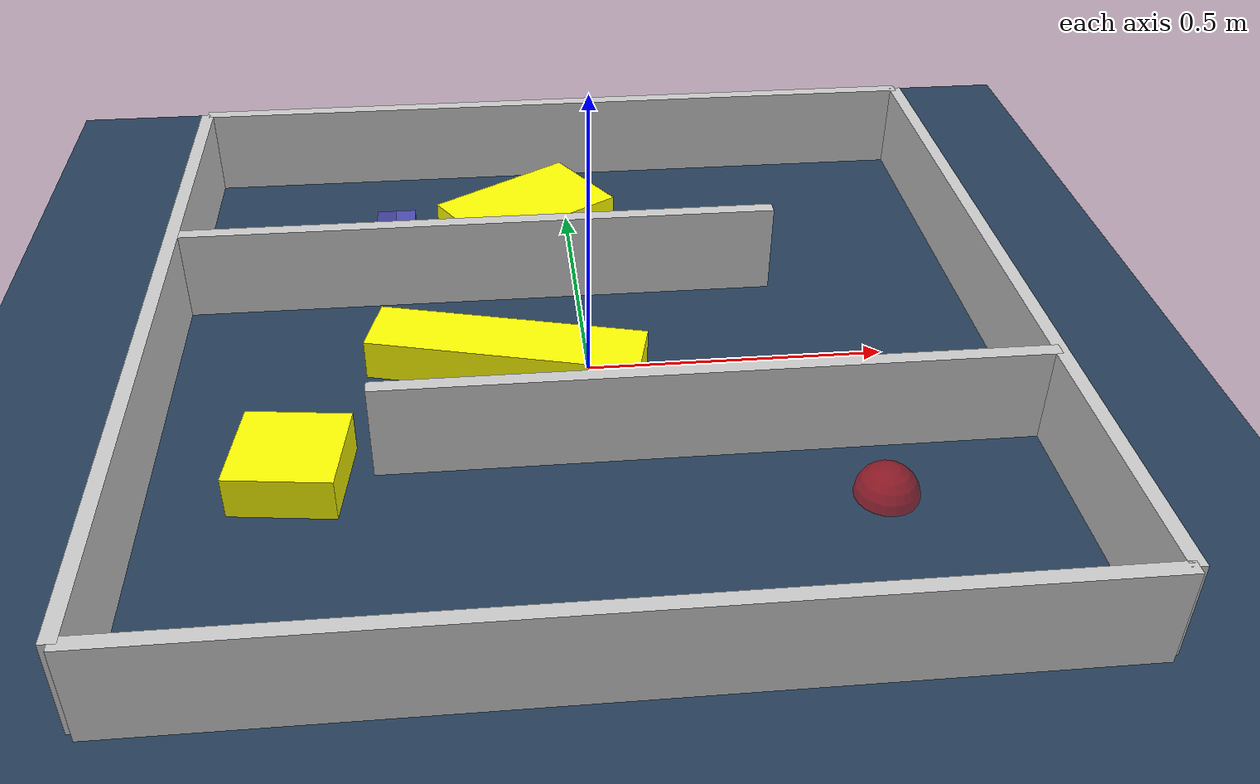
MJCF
<?xml version='1.0' encoding='utf-8'?>
<mujoco model="generated_environment">
  <option timestep="0.002" integrator="implicitfast" cone="elliptic" iterations="100" gravity="0 0 -9.81" />
  <default>
    <geom density="1" />
  </default>
  <asset>
    <texture builtin="gradient" height="3072" rgb1="0.3 0.5 0.7" rgb2="0 0 0" type="skybox" width="512" />
    <texture builtin="checker" height="300" mark="edge" markrgb="0.8 0.8 0.8" name="groundplane" rgb1="0.2 0.3 0.4" rgb2="0.1 0.2 0.3" type="2d" width="300" />
    <material name="groundplane" reflectance="0.2" texrepeat="5 5" texture="groundplane" texuniform="true" />
    <material name="robot" rgba="1.0 1.0 0.0 1.0" />
  </asset>
  <worldbody>
    <light dir="0 0 -1" directional="true" pos="0 0 1.5" />
    <geom condim="4" friction="0.5 0.005 0.001" material="groundplane" name="floor" size="0 0 0.05" type="plane" />
    <body name="walls">
      <geom name="wall_1" condim="4" pos="-0.699000 0.000000 0.080000" rgba="0.800000011920929 0.800000011920929 0.800000011920929 1.0" size="0.011650 0.699000 0.080000" type="box" />
      <geom name="wall_2" condim="4" pos="0.699000 0.000000 0.080000" rgba="0.800000011920929 0.800000011920929 0.800000011920929 1.0" size="0.011650 0.699000 0.080000" type="box" />
      <geom name="wall_3" condim="4" pos="0.000000 -0.699000 0.080000" rgba="0.800000011920929 0.800000011920929 0.800000011920929 1.0" size="0.699000 0.011650 0.080000" type="box" />
      <geom name="wall_4" condim="4" pos="0.000000 0.699000 0.080000" rgba="0.800000011920929 0.800000011920929 0.800000011920929 1.0" size="0.699000 0.011650 0.080000" type="box" />
      <geom name="wall_5" condim="4" pos="0.174750 -0.233000 0.080000" rgba="0.800000011920929 0.800000011920929 0.800000011920929 1.0" size="0.524250 0.011650 0.080000" type="box" />
      <geom name="wall_6" condim="4" pos="-0.174750 0.233000 0.080000" rgba="0.800000011920929 0.800000011920929 0.800000011920929 1.0" size="0.524250 0.011650 0.080000" type="box" />
    </body>
    <body name="car" pos="-0.32500000000000007 0.3849999999999999 0.010000">
      <freejoint name="car_freejoint" />
      <inertial pos="0.000000 0 0.037500" mass="0.350000" diaginertia="0.000266 0.000266 0.000286" />
      <geom name="front_chassis_collision" type="box" pos="0.017500 0 0.037500" size="0.017500 0.035000 0.032500" rgba="0.3 0.3 0.7 1" />
      <geom name="rear_chassis_collision" type="box" pos="-0.017500 0 0.037500" size="0.017500 0.035000 0.032500" rgba="0.25 0.25 0.6 1" />
      <geom name="front_marker" type="box" pos="0.034000 0 0.050500" size="0.002000 0.015000 0.010000" rgba="1.0 0.2 0.2 1" contype="0" conaffinity="0" />
      <body name="rear_support_body" pos="-0.030000 0.000000 0.002500">
        <joint name="rear_caster_joint" type="ball" damping="0.0001" />
        <inertial pos="0 0 0" mass="0.025000" diaginertia="0.000001 0.000001 0.000001" />
        <geom name="rear_support" type="sphere" pos="0 0 0" size="0.002500" friction="0.000000 0.000000 0.000000" rgba="0.7 0.1 0.1 1" />
      </body>
      <body name="front_support_body" pos="0.030000 0.000000 0.002500">
        <joint name="front_caster_joint" type="ball" damping="0.0001" />
        <inertial pos="0 0 0" mass="0.025000" diaginertia="0.000001 0.000001 0.000001" />
        <geom name="front_support" type="sphere" pos="0 0 0" size="0.002500" friction="0.000000 0.000000 0.000000" rgba="0.1 0.7 0.1 1" />
      </body>
      <body name="left_wheel" pos="0.000000 0.037500 0.015000">
        <inertial pos="0 0 0" mass="0.050000" diaginertia="0.000003 0.000006 0.000003" />
        <joint name="left_wheel_joint" type="hinge" axis="0 1 0" />
        <geom name="left_wheel_collision" type="cylinder" size="0.015000 0.000500" euler="90 0 0" rgba="0.1 0.1 0.1 1" />
      </body>
      <body name="right_wheel" pos="0.000000 -0.037500 0.015000">
        <inertial pos="0 0 0" mass="0.050000" diaginertia="0.000003 0.000006 0.000003" />
        <joint name="right_wheel_joint" type="hinge" axis="0 1 0" />
        <geom name="right_wheel_collision" type="cylinder" size="0.015000 0.000500" euler="90 0 0" rgba="0.1 0.1 0.1 1" />
      </body>
    </body>
    <body name="obstacle_0_movable">
      <geom name="obstacle_0_movable" condim="4" pos="-0.4710596717817779 -0.24796999721110047 0.035" euler="0 0 82.86819786710637" friction="0.0 0.005 0.001" rgba="1 1 0 1" size="0.08049020817310956 0.08314213260685267 0.035" type="box" mass="0.1" />
      <joint type="free" />
    </body>
    <body name="obstacle_1_movable">
      <geom name="obstacle_1_movable" condim="4" pos="-0.08035338093123856 0.4538017625653128 0.035" euler="0 0 121.54762130853003" friction="0.0 0.005 0.001" rgba="1 1 0 1" size="0.0889891265298193 0.14385032041899543 0.035" type="box" mass="0.1" />
      <joint type="free" />
    </body>
    <body name="obstacle_2_movable">
      <geom name="obstacle_2_movable" condim="4" pos="-0.13582619503694993 0.0032624358854858038 0.035" euler="0 0 75.54230421339828" friction="0.0 0.005 0.001" rgba="1 1 0 1" size="0.05442282628942751 0.2285664018976014 0.035" type="box" mass="0.1" />
      <joint type="free" />
    </body>
    <site name="goal" type="sphere" pos="0.41500000000000015 -0.35499999999999987 0.0" size="0.05" rgba="1 0 0 0.5" />
  </worldbody>
  <actuator>
    <velocity name="left_wheel_drive" joint="left_wheel_joint" ctrlrange="-25.000000 25.000000" kv="0.750000" forcerange="-0.300000 0.300000" />
    <velocity name="right_wheel_drive" joint="right_wheel_joint" ctrlrange="-25.000000 25.000000" kv="0.750000" forcerange="-0.300000 0.300000" />
  </actuator>
</mujoco>
